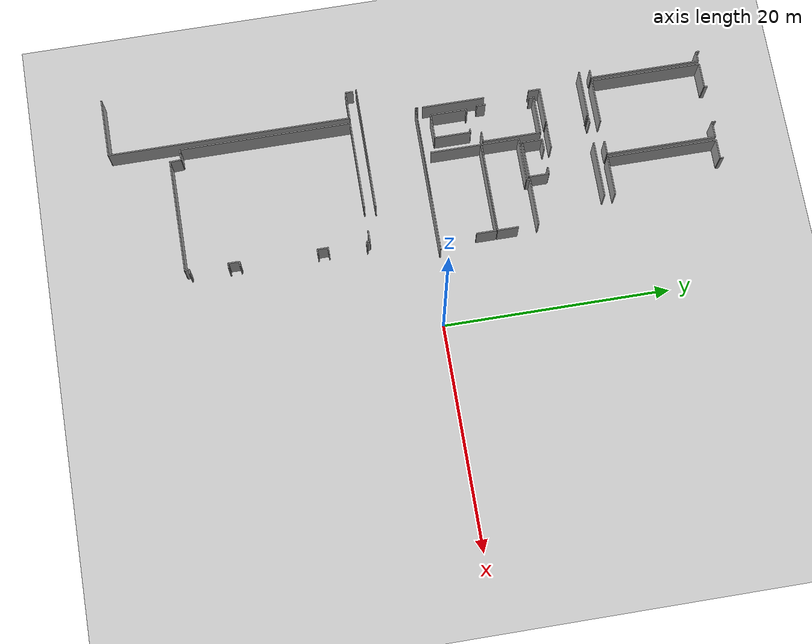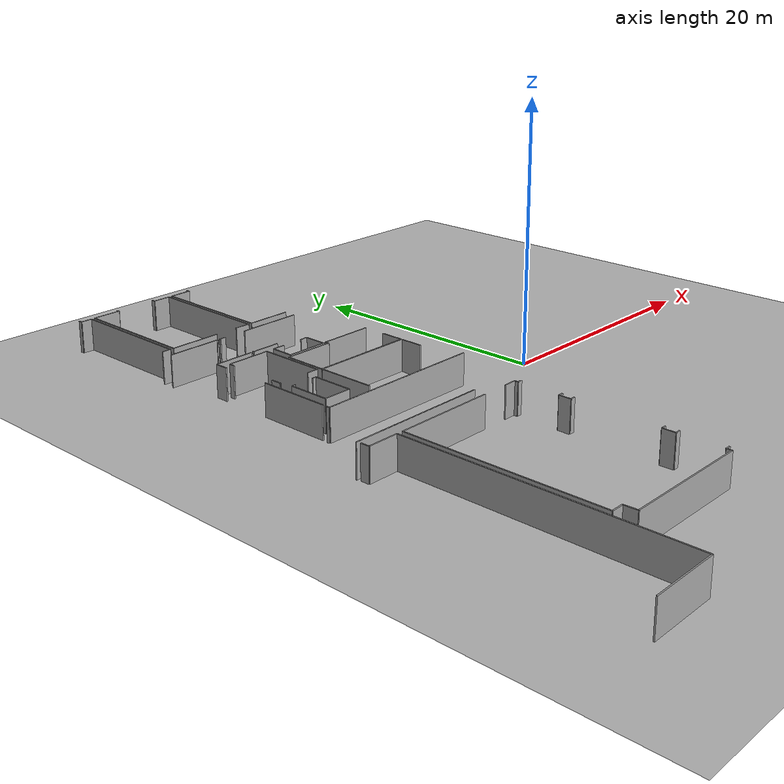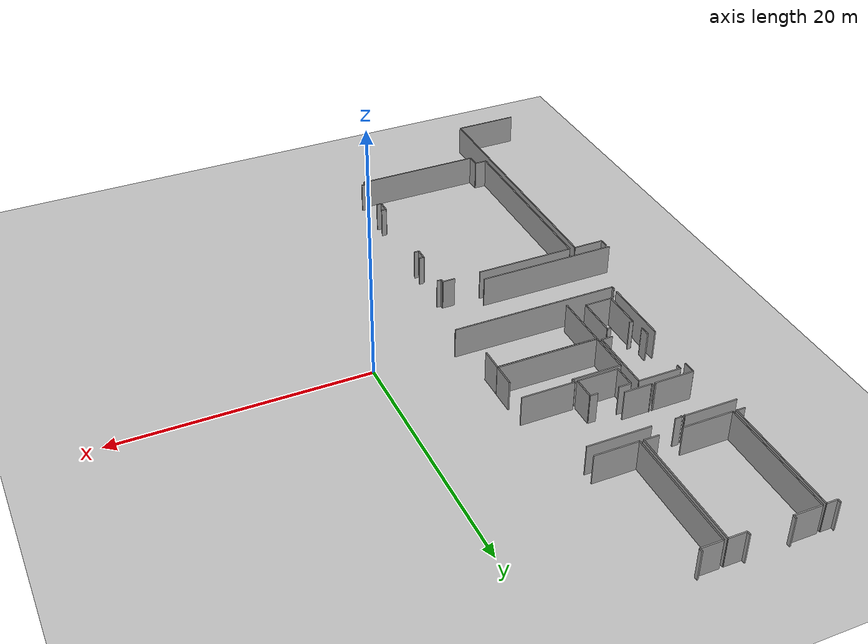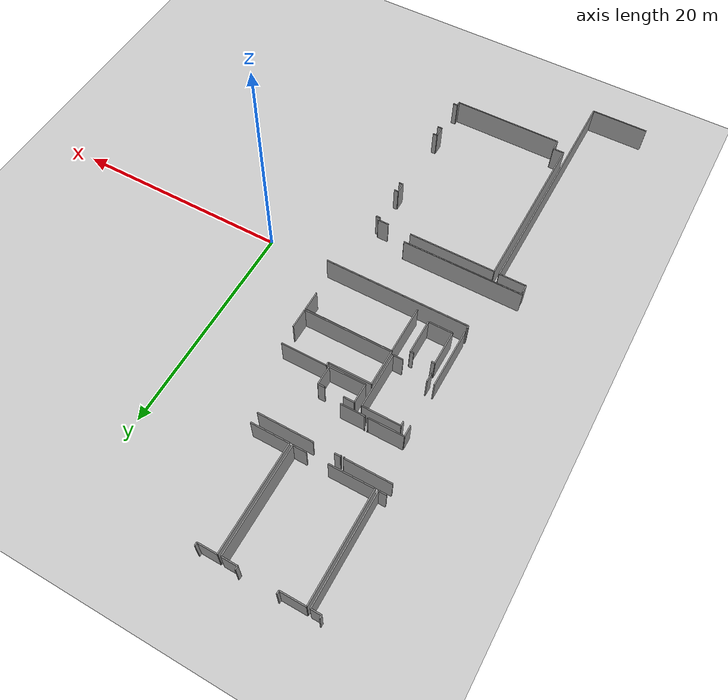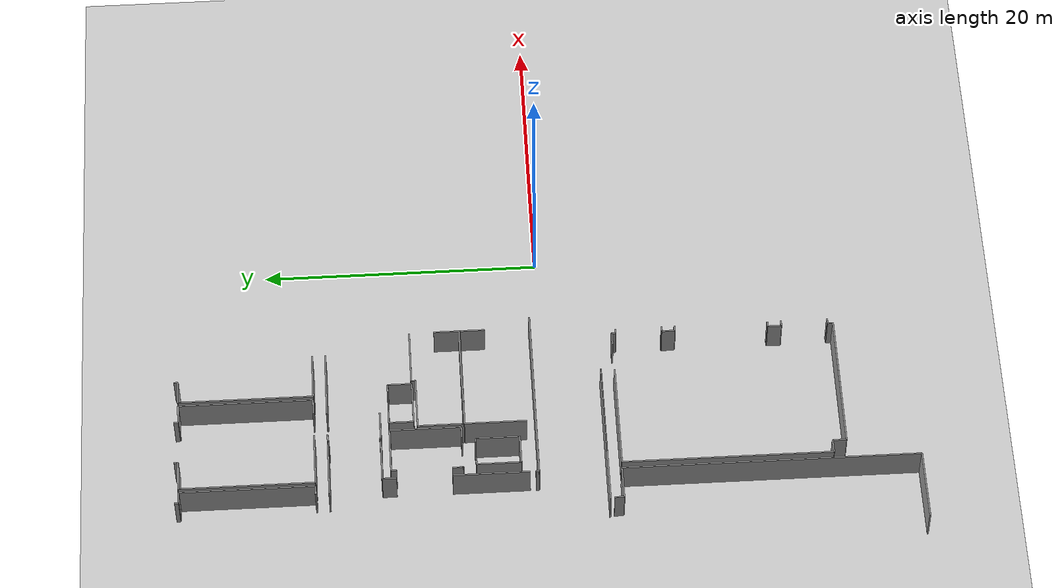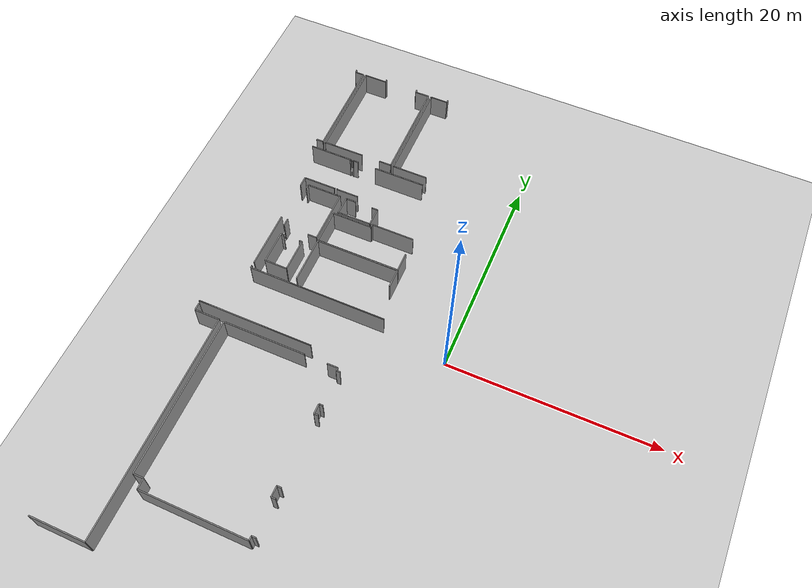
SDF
<sdf version="1.6">
 <world name="default">
  <model name="ground_plane">
   <static>1</static>
   <link name="link">
    <collision name="collision">
     <geometry><plane><normal>0 0 1</normal><size>100 100</size></plane></geometry>
     <surface><friction><ode><mu>100</mu><mu2>50</mu2></ode></friction></surface>
    </collision>
    <visual name="visual">
     <cast_shadows>0</cast_shadows>
     <geometry><plane><normal>0 0 1</normal><size>100 100</size></plane></geometry>
     <material>
      <script><uri>file://media/materials/scripts/gazebo.material</uri><name>Gazebo/Grey</name></script>
     </material>
    </visual>
   </link>
  </model>
  <model name="0510032192_A_40_1_103">
   <static>1</static>
   <link name="Wall_141">
    <collision name="Wall_141_Collision">
     <geometry><box><size>5.53466390558 0.1 2.5</size></box></geometry>
     <pose>2.76733195279 0 1.25 0 0 0</pose>
    </collision>
    <visual name="Wall_141_Visual">
     <pose>2.76733195279 0 1.25 0 0 0</pose>
     <geometry><box><size>5.53466390558 0.1 2.5</size></box></geometry>
     <material>
      <script><uri>file://media/materials/scripts/gazebo.material</uri><name>Gazebo/Grey</name></script>
      <ambient>1 1 1 1</ambient>
     </material>
    </visual>
    <pose>48.0369189333 -25.3327912797 0 0 0 1.57079632679</pose>
   </link>
   <link name="Wall_142">
    <collision name="Wall_142_Collision">
     <geometry><box><size>1.01241218096 0.1 2.5</size></box></geometry>
     <pose>0.506206090481 0 1.25 0 0 0</pose>
    </collision>
    <visual name="Wall_142_Visual">
     <pose>0.506206090481 0 1.25 0 0 0</pose>
     <geometry><box><size>1.01241218096 0.1 2.5</size></box></geometry>
     <material>
      <script><uri>file://media/materials/scripts/gazebo.material</uri><name>Gazebo/Grey</name></script>
      <ambient>1 1 1 1</ambient>
     </material>
    </visual>
    <pose>48.0369189333 -15.7928169426 0 0 0 1.57079632679</pose>
   </link>
   <link name="Wall_143">
    <collision name="Wall_143_Collision">
     <geometry><box><size>3.13353575648 0.1 2.5</size></box></geometry>
     <pose>1.56676787824 0 1.25 0 0 0</pose>
    </collision>
    <visual name="Wall_143_Visual">
     <pose>1.56676787824 0 1.25 0 0 0</pose>
     <geometry><box><size>3.13353575648 0.1 2.5</size></box></geometry>
     <material>
      <script><uri>file://media/materials/scripts/gazebo.material</uri><name>Gazebo/Grey</name></script>
      <ambient>1 1 1 1</ambient>
     </material>
    </visual>
    <pose>48.0369189333 -14.7804047616 0 0 0 0.0</pose>
   </link>
   <link name="Wall_144">
    <collision name="Wall_144_Collision">
     <geometry><box><size>0.066825047959 0.1 2.5</size></box></geometry>
     <pose>0.0334125239795 0 1.25 0 0 0</pose>
    </collision>
    <visual name="Wall_144_Visual">
     <pose>0.0334125239795 0 1.25 0 0 0</pose>
     <geometry><box><size>0.066825047959 0.1 2.5</size></box></geometry>
     <material>
      <script><uri>file://media/materials/scripts/gazebo.material</uri><name>Gazebo/Grey</name></script>
      <ambient>1 1 1 1</ambient>
     </material>
    </visual>
    <pose>51.1704546898 -14.7804047616 0 0 0 1.57079632679</pose>
   </link>
   <link name="Wall_145">
    <collision name="Wall_145_Collision">
     <geometry><box><size>0.103794798826 0.1 2.5</size></box></geometry>
     <pose>0.0518973994131 0 1.25 0 0 0</pose>
    </collision>
    <visual name="Wall_145_Visual">
     <pose>0.0518973994131 0 1.25 0 0 0</pose>
     <geometry><box><size>0.103794798826 0.1 2.5</size></box></geometry>
     <material>
      <script><uri>file://media/materials/scripts/gazebo.material</uri><name>Gazebo/Grey</name></script>
      <ambient>1 1 1 1</ambient>
     </material>
    </visual>
    <pose>51.1704546898 -11.100072415 0 0 0 1.57079632679</pose>
   </link>
   <link name="Wall_146">
    <collision name="Wall_146_Collision">
     <geometry><box><size>4.16945104366 0.1 2.5</size></box></geometry>
     <pose>2.08472552183 0 1.25 0 0 0</pose>
    </collision>
    <visual name="Wall_146_Visual">
     <pose>2.08472552183 0 1.25 0 0 0</pose>
     <geometry><box><size>4.16945104366 0.1 2.5</size></box></geometry>
     <material>
      <script><uri>file://media/materials/scripts/gazebo.material</uri><name>Gazebo/Grey</name></script>
      <ambient>1 1 1 1</ambient>
     </material>
    </visual>
    <pose>51.1704546898 -10.9962776161 0 0 0 3.14159265359</pose>
   </link>
   <link name="Wall_163">
    <collision name="Wall_163_Collision">
     <geometry><box><size>0.785384879245 0.1 2.5</size></box></geometry>
     <pose>0.392692439622 0 1.25 0 0 0</pose>
    </collision>
    <visual name="Wall_163_Visual">
     <pose>0.392692439622 0 1.25 0 0 0</pose>
     <geometry><box><size>0.785384879245 0.1 2.5</size></box></geometry>
     <material>
      <script><uri>file://media/materials/scripts/gazebo.material</uri><name>Gazebo/Grey</name></script>
      <ambient>1 1 1 1</ambient>
     </material>
    </visual>
    <pose>48.6773468169 -20.5763977996 0 0 0 1.57079632679</pose>
   </link>
   <link name="Wall_164">
    <collision name="Wall_164_Collision">
     <geometry><box><size>0.406794303355 0.1 2.5</size></box></geometry>
     <pose>0.203397151678 0 1.25 0 0 0</pose>
    </collision>
    <visual name="Wall_164_Visual">
     <pose>0.203397151678 0 1.25 0 0 0</pose>
     <geometry><box><size>0.406794303355 0.1 2.5</size></box></geometry>
     <material>
      <script><uri>file://media/materials/scripts/gazebo.material</uri><name>Gazebo/Grey</name></script>
      <ambient>1 1 1 1</ambient>
     </material>
    </visual>
    <pose>48.6773468169 -15.8386797606 0 0 0 1.57079632679</pose>
   </link>
   <link name="Wall_165">
    <collision name="Wall_165_Collision">
     <geometry><box><size>3.408712665 0.1 2.5</size></box></geometry>
     <pose>1.7043563325 0 1.25 0 0 0</pose>
    </collision>
    <visual name="Wall_165_Visual">
     <pose>1.7043563325 0 1.25 0 0 0</pose>
     <geometry><box><size>3.408712665 0.1 2.5</size></box></geometry>
     <material>
      <script><uri>file://media/materials/scripts/gazebo.material</uri><name>Gazebo/Grey</name></script>
      <ambient>1 1 1 1</ambient>
     </material>
    </visual>
    <pose>48.6773468169 -15.4318854573 0 0 0 0.0</pose>
   </link>
   <link name="Wall_166">
    <collision name="Wall_166_Collision">
     <geometry><box><size>5.15556515442 0.1 2.5</size></box></geometry>
     <pose>2.57778257721 0 1.25 0 0 0</pose>
    </collision>
    <visual name="Wall_166_Visual">
     <pose>2.57778257721 0 1.25 0 0 0</pose>
     <geometry><box><size>5.15556515442 0.1 2.5</size></box></geometry>
     <material>
      <script><uri>file://media/materials/scripts/gazebo.material</uri><name>Gazebo/Grey</name></script>
      <ambient>1 1 1 1</ambient>
     </material>
    </visual>
    <pose>52.0860594819 -15.4318854573 0 0 0 -1.57079632679</pose>
   </link>
   <link name="Wall_167">
    <collision name="Wall_167_Collision">
     <geometry><box><size>0.893245080228 0.1 2.5</size></box></geometry>
     <pose>0.446622540114 0 1.25 0 0 0</pose>
    </collision>
    <visual name="Wall_167_Visual">
     <pose>0.446622540114 0 1.25 0 0 0</pose>
     <geometry><box><size>0.893245080228 0.1 2.5</size></box></geometry>
     <material>
      <script><uri>file://media/materials/scripts/gazebo.material</uri><name>Gazebo/Grey</name></script>
      <ambient>1 1 1 1</ambient>
     </material>
    </visual>
    <pose>52.0860594819 -20.5874506117 0 0 0 3.14159265359</pose>
   </link>
   <link name="Wall_168">
    <collision name="Wall_168_Collision">
     <geometry><box><size>0.0437255955053 0.1 2.5</size></box></geometry>
     <pose>0.0218627977527 0 1.25 0 0 0</pose>
    </collision>
    <visual name="Wall_168_Visual">
     <pose>0.0218627977527 0 1.25 0 0 0</pose>
     <geometry><box><size>0.0437255955053 0.1 2.5</size></box></geometry>
     <material>
      <script><uri>file://media/materials/scripts/gazebo.material</uri><name>Gazebo/Grey</name></script>
      <ambient>1 1 1 1</ambient>
     </material>
    </visual>
    <pose>48.7196524081 -20.5874506117 0 0 0 2.88604355965</pose>
   </link>
   <link name="Wall_169">
    <collision name="Wall_169_Collision">
     <geometry><box><size>2.17905555626 0.1 2.5</size></box></geometry>
     <pose>1.08952777813 0 1.25 0 0 0</pose>
    </collision>
    <visual name="Wall_169_Visual">
     <pose>1.08952777813 0 1.25 0 0 0</pose>
     <geometry><box><size>2.17905555626 0.1 2.5</size></box></geometry>
     <material>
      <script><uri>file://media/materials/scripts/gazebo.material</uri><name>Gazebo/Grey</name></script>
      <ambient>1 1 1 1</ambient>
     </material>
    </visual>
    <pose>48.870707507 -24.7314928919 0 0 0 0.0</pose>
   </link>
   <link name="Wall_170">
    <collision name="Wall_170_Collision">
     <geometry><box><size>3.1898161676 0.1 2.5</size></box></geometry>
     <pose>1.5949080838 0 1.25 0 0 0</pose>
    </collision>
    <visual name="Wall_170_Visual">
     <pose>1.5949080838 0 1.25 0 0 0</pose>
     <geometry><box><size>3.1898161676 0.1 2.5</size></box></geometry>
     <material>
      <script><uri>file://media/materials/scripts/gazebo.material</uri><name>Gazebo/Grey</name></script>
      <ambient>1 1 1 1</ambient>
     </material>
    </visual>
    <pose>51.0497630633 -24.7314928919 0 0 0 1.57079632679</pose>
   </link>
   <link name="Wall_171">
    <collision name="Wall_171_Collision">
     <geometry><box><size>0.303126548347 0.1 2.5</size></box></geometry>
     <pose>0.151563274173 0 1.25 0 0 0</pose>
    </collision>
    <visual name="Wall_171_Visual">
     <pose>0.151563274173 0 1.25 0 0 0</pose>
     <geometry><box><size>0.303126548347 0.1 2.5</size></box></geometry>
     <material>
      <script><uri>file://media/materials/scripts/gazebo.material</uri><name>Gazebo/Grey</name></script>
      <ambient>1 1 1 1</ambient>
     </material>
    </visual>
    <pose>51.0497630633 -21.5416767243 0 0 0 3.14159265359</pose>
   </link>
   <link name="Wall_172">
    <collision name="Wall_172_Collision">
     <geometry><box><size>0.291057385692 0.1 2.5</size></box></geometry>
     <pose>0.145528692846 0 1.25 0 0 0</pose>
    </collision>
    <visual name="Wall_172_Visual">
     <pose>0.145528692846 0 1.25 0 0 0</pose>
     <geometry><box><size>0.291057385692 0.1 2.5</size></box></geometry>
     <material>
      <script><uri>file://media/materials/scripts/gazebo.material</uri><name>Gazebo/Grey</name></script>
      <ambient>1 1 1 1</ambient>
     </material>
    </visual>
    <pose>49.1606214984 -21.5416767243 0 0 0 3.14159265359</pose>
   </link>
   <link name="Wall_173">
    <collision name="Wall_173_Collision">
     <geometry><box><size>3.18981637252 0.1 2.5</size></box></geometry>
     <pose>1.59490818626 0 1.25 0 0 0</pose>
    </collision>
    <visual name="Wall_173_Visual">
     <pose>1.59490818626 0 1.25 0 0 0</pose>
     <geometry><box><size>3.18981637252 0.1 2.5</size></box></geometry>
     <material>
      <script><uri>file://media/materials/scripts/gazebo.material</uri><name>Gazebo/Grey</name></script>
      <ambient>1 1 1 1</ambient>
     </material>
    </visual>
    <pose>48.8695641127 -21.5416767243 0 0 0 -1.57043787532</pose>
   </link>
   <link name="Wall_175">
    <collision name="Wall_175_Collision">
     <geometry><box><size>0.693024023986 0.1 2.5</size></box></geometry>
     <pose>0.346512011993 0 1.25 0 0 0</pose>
    </collision>
    <visual name="Wall_175_Visual">
     <pose>0.346512011993 0 1.25 0 0 0</pose>
     <geometry><box><size>0.693024023986 0.1 2.5</size></box></geometry>
     <material>
      <script><uri>file://media/materials/scripts/gazebo.material</uri><name>Gazebo/Grey</name></script>
      <ambient>1 1 1 1</ambient>
     </material>
    </visual>
    <pose>46.9926187542 -10.0329043487 0 0 0 0.0</pose>
   </link>
   <link name="Wall_176">
    <collision name="Wall_176_Collision">
     <geometry><box><size>9.7241878724 0.1 2.5</size></box></geometry>
     <pose>4.8620939362 0 1.25 0 0 0</pose>
    </collision>
    <visual name="Wall_176_Visual">
     <pose>4.8620939362 0 1.25 0 0 0</pose>
     <geometry><box><size>9.7241878724 0.1 2.5</size></box></geometry>
     <material>
      <script><uri>file://media/materials/scripts/gazebo.material</uri><name>Gazebo/Grey</name></script>
      <ambient>1 1 1 1</ambient>
     </material>
    </visual>
    <pose>47.6856427782 -10.0329043487 0 0 0 1.57079632679</pose>
   </link>
   <link name="Wall_177">
    <collision name="Wall_177_Collision">
     <geometry><box><size>0.890831247697 0.1 2.5</size></box></geometry>
     <pose>0.445415623849 0 1.25 0 0 0</pose>
    </collision>
    <visual name="Wall_177_Visual">
     <pose>0.445415623849 0 1.25 0 0 0</pose>
     <geometry><box><size>0.890831247697 0.1 2.5</size></box></geometry>
     <material>
      <script><uri>file://media/materials/scripts/gazebo.material</uri><name>Gazebo/Grey</name></script>
      <ambient>1 1 1 1</ambient>
     </material>
    </visual>
    <pose>47.6856427782 -0.308716476313 0 0 0 3.14159265359</pose>
   </link>
   <link name="Wall_178">
    <collision name="Wall_178_Collision">
     <geometry><box><size>0.28330771283 0.1 2.5</size></box></geometry>
     <pose>0.141653856415 0 1.25 0 0 0</pose>
    </collision>
    <visual name="Wall_178_Visual">
     <pose>0.141653856415 0 1.25 0 0 0</pose>
     <geometry><box><size>0.28330771283 0.1 2.5</size></box></geometry>
     <material>
      <script><uri>file://media/materials/scripts/gazebo.material</uri><name>Gazebo/Grey</name></script>
      <ambient>1 1 1 1</ambient>
     </material>
    </visual>
    <pose>46.7948115305 -0.308716476313 0 0 0 1.57079632679</pose>
   </link>
   <link name="Wall_182">
    <collision name="Wall_182_Collision">
     <geometry><box><size>0.0918526799893 0.1 2.5</size></box></geometry>
     <pose>0.0459263399947 0 1.25 0 0 0</pose>
    </collision>
    <visual name="Wall_182_Visual">
     <pose>0.0459263399947 0 1.25 0 0 0</pose>
     <geometry><box><size>0.0918526799893 0.1 2.5</size></box></geometry>
     <material>
      <script><uri>file://media/materials/scripts/gazebo.material</uri><name>Gazebo/Grey</name></script>
      <ambient>1 1 1 1</ambient>
     </material>
    </visual>
    <pose>51.4294970335 -14.7886626097 0 0 0 1.57079632679</pose>
   </link>
   <link name="Wall_183">
    <collision name="Wall_183_Collision">
     <geometry><box><size>0.0993482652167 0.1 2.5</size></box></geometry>
     <pose>0.0496741326083 0 1.25 0 0 0</pose>
    </collision>
    <visual name="Wall_183_Visual">
     <pose>0.0496741326083 0 1.25 0 0 0</pose>
     <geometry><box><size>0.0993482652167 0.1 2.5</size></box></geometry>
     <material>
      <script><uri>file://media/materials/scripts/gazebo.material</uri><name>Gazebo/Grey</name></script>
      <ambient>1 1 1 1</ambient>
     </material>
    </visual>
    <pose>51.4294970335 -11.0928309174 0 0 0 1.57079632679</pose>
   </link>
   <link name="Wall_184">
    <collision name="Wall_184_Collision">
     <geometry><box><size>0.515797898695 0.1 2.5</size></box></geometry>
     <pose>0.257898949348 0 1.25 0 0 0</pose>
    </collision>
    <visual name="Wall_184_Visual">
     <pose>0.257898949348 0 1.25 0 0 0</pose>
     <geometry><box><size>0.515797898695 0.1 2.5</size></box></geometry>
     <material>
      <script><uri>file://media/materials/scripts/gazebo.material</uri><name>Gazebo/Grey</name></script>
      <ambient>1 1 1 1</ambient>
     </material>
    </visual>
    <pose>51.4294970335 -10.9934826522 0 0 0 0.0</pose>
   </link>
   <link name="Wall_185">
    <collision name="Wall_185_Collision">
     <geometry><box><size>4.98227738747 0.1 2.5</size></box></geometry>
     <pose>2.49113869374 0 1.25 0 0 0</pose>
    </collision>
    <visual name="Wall_185_Visual">
     <pose>2.49113869374 0 1.25 0 0 0</pose>
     <geometry><box><size>4.98227738747 0.1 2.5</size></box></geometry>
     <material>
      <script><uri>file://media/materials/scripts/gazebo.material</uri><name>Gazebo/Grey</name></script>
      <ambient>1 1 1 1</ambient>
     </material>
    </visual>
    <pose>53.7973397025 -10.9934826522 0 0 0 0.0</pose>
   </link>
   <link name="Wall_204">
    <collision name="Wall_204_Collision">
     <geometry><box><size>2.20370882796 0.1 2.5</size></box></geometry>
     <pose>1.10185441398 0 1.25 0 0 0</pose>
    </collision>
    <visual name="Wall_204_Visual">
     <pose>1.10185441398 0 1.25 0 0 0</pose>
     <geometry><box><size>2.20370882796 0.1 2.5</size></box></geometry>
     <material>
      <script><uri>file://media/materials/scripts/gazebo.material</uri><name>Gazebo/Grey</name></script>
      <ambient>1 1 1 1</ambient>
     </material>
    </visual>
    <pose>53.6331990904 -14.7831997256 0 0 0 -3.13911370098</pose>
   </link>
   <link name="Wall_205">
    <collision name="Wall_205_Collision">
     <geometry><box><size>9.7504859426 0.1 2.5</size></box></geometry>
     <pose>4.8752429713 0 1.25 0 0 0</pose>
    </collision>
    <visual name="Wall_205_Visual">
     <pose>4.8752429713 0 1.25 0 0 0</pose>
     <geometry><box><size>9.7504859426 0.1 2.5</size></box></geometry>
     <material>
      <script><uri>file://media/materials/scripts/gazebo.material</uri><name>Gazebo/Grey</name></script>
      <ambient>1 1 1 1</ambient>
     </material>
    </visual>
    <pose>47.9741592875 -10.0386213205 0 0 0 1.57079632679</pose>
   </link>
   <link name="Wall_206">
    <collision name="Wall_206_Collision">
     <geometry><box><size>2.22860264505 0.1 2.5</size></box></geometry>
     <pose>1.11430132253 0 1.25 0 0 0</pose>
    </collision>
    <visual name="Wall_206_Visual">
     <pose>1.11430132253 0 1.25 0 0 0</pose>
     <geometry><box><size>2.22860264505 0.1 2.5</size></box></geometry>
     <material>
      <script><uri>file://media/materials/scripts/gazebo.material</uri><name>Gazebo/Grey</name></script>
      <ambient>1 1 1 1</ambient>
     </material>
    </visual>
    <pose>47.9741592875 -0.288135377892 0 0 0 0.0</pose>
   </link>
   <link name="Wall_207">
    <collision name="Wall_207_Collision">
     <geometry><box><size>0.288135377892 0.1 2.5</size></box></geometry>
     <pose>0.144067688946 0 1.25 0 0 0</pose>
    </collision>
    <visual name="Wall_207_Visual">
     <pose>0.144067688946 0 1.25 0 0 0</pose>
     <geometry><box><size>0.288135377892 0.1 2.5</size></box></geometry>
     <material>
      <script><uri>file://media/materials/scripts/gazebo.material</uri><name>Gazebo/Grey</name></script>
      <ambient>1 1 1 1</ambient>
     </material>
    </visual>
    <pose>50.2027619326 -0.288135377892 0 0 0 1.57079632679</pose>
   </link>
   <link name="Wall_208">
    <collision name="Wall_208_Collision">
     <geometry><box><size>0.315957973905 0.1 2.5</size></box></geometry>
     <pose>0.157978986953 0 1.25 0 0 0</pose>
    </collision>
    <visual name="Wall_208_Visual">
     <pose>0.157978986953 0 1.25 0 0 0</pose>
     <geometry><box><size>0.315957973905 0.1 2.5</size></box></geometry>
     <material>
      <script><uri>file://media/materials/scripts/gazebo.material</uri><name>Gazebo/Grey</name></script>
      <ambient>1 1 1 1</ambient>
     </material>
    </visual>
    <pose>53.6034708371 -0.0 0 0 0 -1.57079632679</pose>
   </link>
   <link name="Wall_209">
    <collision name="Wall_209_Collision">
     <geometry><box><size>1.40662914639 0.1 2.5</size></box></geometry>
     <pose>0.703314573196 0 1.25 0 0 0</pose>
    </collision>
    <visual name="Wall_209_Visual">
     <pose>0.703314573196 0 1.25 0 0 0</pose>
     <geometry><box><size>1.40662914639 0.1 2.5</size></box></geometry>
     <material>
      <script><uri>file://media/materials/scripts/gazebo.material</uri><name>Gazebo/Grey</name></script>
      <ambient>1 1 1 1</ambient>
     </material>
    </visual>
    <pose>53.6034708371 -0.315957973905 0 0 0 0.0</pose>
   </link>
   <link name="Wall_210">
    <collision name="Wall_210_Collision">
     <geometry><box><size>9.71135644684 0.1 2.5</size></box></geometry>
     <pose>4.85567822342 0 1.25 0 0 0</pose>
    </collision>
    <visual name="Wall_210_Visual">
     <pose>4.85567822342 0 1.25 0 0 0</pose>
     <geometry><box><size>9.71135644684 0.1 2.5</size></box></geometry>
     <material>
      <script><uri>file://media/materials/scripts/gazebo.material</uri><name>Gazebo/Grey</name></script>
      <ambient>1 1 1 1</ambient>
     </material>
    </visual>
    <pose>55.0100999835 -0.315957973905 0 0 0 -1.57079632679</pose>
   </link>
   <link name="Wall_211">
    <collision name="Wall_211_Collision">
     <geometry><box><size>1.20043703073 0.1 2.5</size></box></geometry>
     <pose>0.600218515366 0 1.25 0 0 0</pose>
    </collision>
    <visual name="Wall_211_Visual">
     <pose>0.600218515366 0 1.25 0 0 0</pose>
     <geometry><box><size>1.20043703073 0.1 2.5</size></box></geometry>
     <material>
      <script><uri>file://media/materials/scripts/gazebo.material</uri><name>Gazebo/Grey</name></script>
      <ambient>1 1 1 1</ambient>
     </material>
    </visual>
    <pose>55.0100999835 -10.0273144207 0 0 0 3.14159265359</pose>
   </link>
   <link name="Wall_212">
    <collision name="Wall_212_Collision">
     <geometry><box><size>3.97407373752 0.1 2.5</size></box></geometry>
     <pose>1.98703686876 0 1.25 0 0 0</pose>
    </collision>
    <visual name="Wall_212_Visual">
     <pose>1.98703686876 0 1.25 0 0 0</pose>
     <geometry><box><size>3.97407373752 0.1 2.5</size></box></geometry>
     <material>
      <script><uri>file://media/materials/scripts/gazebo.material</uri><name>Gazebo/Grey</name></script>
      <ambient>1 1 1 1</ambient>
     </material>
    </visual>
    <pose>51.94821694 -10.0273144207 0 0 0 -3.13874748368</pose>
   </link>
   <link name="Wall_213">
    <collision name="Wall_213_Collision">
     <geometry><box><size>9.73320798343 0.1 2.5</size></box></geometry>
     <pose>4.86660399172 0 1.25 0 0 0</pose>
    </collision>
    <visual name="Wall_213_Visual">
     <pose>4.86660399172 0 1.25 0 0 0</pose>
     <geometry><box><size>9.73320798343 0.1 2.5</size></box></geometry>
     <material>
      <script><uri>file://media/materials/scripts/gazebo.material</uri><name>Gazebo/Grey</name></script>
      <ambient>1 1 1 1</ambient>
     </material>
    </visual>
    <pose>55.308271823 -10.0456087305 0 0 0 1.57079632679</pose>
   </link>
   <link name="Wall_214">
    <collision name="Wall_214_Collision">
     <geometry><box><size>1.73465628295 0.1 2.5</size></box></geometry>
     <pose>0.867328141476 0 1.25 0 0 0</pose>
    </collision>
    <visual name="Wall_214_Visual">
     <pose>0.867328141476 0 1.25 0 0 0</pose>
     <geometry><box><size>1.73465628295 0.1 2.5</size></box></geometry>
     <material>
      <script><uri>file://media/materials/scripts/gazebo.material</uri><name>Gazebo/Grey</name></script>
      <ambient>1 1 1 1</ambient>
     </material>
    </visual>
    <pose>55.308271823 -0.312400747018 0 0 0 0.0</pose>
   </link>
   <link name="Wall_215">
    <collision name="Wall_215_Collision">
     <geometry><box><size>0.292327823866 0.1 2.5</size></box></geometry>
     <pose>0.146163911933 0 1.25 0 0 0</pose>
    </collision>
    <visual name="Wall_215_Visual">
     <pose>0.146163911933 0 1.25 0 0 0</pose>
     <geometry><box><size>0.292327823866 0.1 2.5</size></box></geometry>
     <material>
      <script><uri>file://media/materials/scripts/gazebo.material</uri><name>Gazebo/Grey</name></script>
      <ambient>1 1 1 1</ambient>
     </material>
    </visual>
    <pose>57.0429281059 -0.312400747018 0 0 0 1.57079632679</pose>
   </link>
   <link name="Wall_220">
    <collision name="Wall_220_Collision">
     <geometry><box><size>3.47820732453 0.1 2.5</size></box></geometry>
     <pose>1.73910366227 0 1.25 0 0 0</pose>
    </collision>
    <visual name="Wall_220_Visual">
     <pose>1.73910366227 0 1.25 0 0 0</pose>
     <geometry><box><size>3.47820732453 0.1 2.5</size></box></geometry>
     <material>
      <script><uri>file://media/materials/scripts/gazebo.material</uri><name>Gazebo/Grey</name></script>
      <ambient>1 1 1 1</ambient>
     </material>
    </visual>
    <pose>58.7864774561 -10.0421785474 0 0 0 -3.14060646062</pose>
   </link>
   <link name="Wall_350">
    <collision name="Wall_350_Collision">
     <geometry><box><size>1.77797822469 0.1 2.5</size></box></geometry>
     <pose>0.888989112345 0 1.25 0 0 0</pose>
    </collision>
    <visual name="Wall_350_Visual">
     <pose>0.888989112345 0 1.25 0 0 0</pose>
     <geometry><box><size>1.77797822469 0.1 2.5</size></box></geometry>
     <material>
      <script><uri>file://media/materials/scripts/gazebo.material</uri><name>Gazebo/Grey</name></script>
      <ambient>1 1 1 1</ambient>
     </material>
    </visual>
    <pose>52.7365238271 -17.1970322564 0 0 0 1.57079632679</pose>
   </link>
   <link name="Wall_351">
    <collision name="Wall_351_Collision">
     <geometry><box><size>0.960959434909 0.1 2.5</size></box></geometry>
     <pose>0.480479717455 0 1.25 0 0 0</pose>
    </collision>
    <visual name="Wall_351_Visual">
     <pose>0.480479717455 0 1.25 0 0 0</pose>
     <geometry><box><size>0.960959434909 0.1 2.5</size></box></geometry>
     <material>
      <script><uri>file://media/materials/scripts/gazebo.material</uri><name>Gazebo/Grey</name></script>
      <ambient>1 1 1 1</ambient>
     </material>
    </visual>
    <pose>52.7365238271 -15.4190540317 0 0 0 0.0</pose>
   </link>
   <link name="Wall_352">
    <collision name="Wall_352_Collision">
     <geometry><box><size>0.604601527067 0.1 2.5</size></box></geometry>
     <pose>0.302300763533 0 1.25 0 0 0</pose>
    </collision>
    <visual name="Wall_352_Visual">
     <pose>0.302300763533 0 1.25 0 0 0</pose>
     <geometry><box><size>0.604601527067 0.1 2.5</size></box></geometry>
     <material>
      <script><uri>file://media/materials/scripts/gazebo.material</uri><name>Gazebo/Grey</name></script>
      <ambient>1 1 1 1</ambient>
     </material>
    </visual>
    <pose>55.3844981134 -15.4190540317 0 0 0 0.0</pose>
   </link>
   <link name="Wall_353">
    <collision name="Wall_353_Collision">
     <geometry><box><size>1.75803234536 0.1 2.5</size></box></geometry>
     <pose>0.879016172678 0 1.25 0 0 0</pose>
    </collision>
    <visual name="Wall_353_Visual">
     <pose>0.879016172678 0 1.25 0 0 0</pose>
     <geometry><box><size>1.75803234536 0.1 2.5</size></box></geometry>
     <material>
      <script><uri>file://media/materials/scripts/gazebo.material</uri><name>Gazebo/Grey</name></script>
      <ambient>1 1 1 1</ambient>
     </material>
    </visual>
    <pose>55.9890996405 -15.4190540317 0 0 0 -1.57079632679</pose>
   </link>
   <link name="Wall_354">
    <collision name="Wall_354_Collision">
     <geometry><box><size>3.25263697021 0.1 2.5</size></box></geometry>
     <pose>1.62631848511 0 1.25 0 0 0</pose>
    </collision>
    <visual name="Wall_354_Visual">
     <pose>1.62631848511 0 1.25 0 0 0</pose>
     <geometry><box><size>3.25263697021 0.1 2.5</size></box></geometry>
     <material>
      <script><uri>file://media/materials/scripts/gazebo.material</uri><name>Gazebo/Grey</name></script>
      <ambient>1 1 1 1</ambient>
     </material>
    </visual>
    <pose>55.9890996405 -17.1770863771 0 0 0 -3.13546039705</pose>
   </link>
   <link name="Wall_355">
    <collision name="Wall_355_Collision">
     <geometry><box><size>3.33337568127 0.1 2.5</size></box></geometry>
     <pose>1.66668784064 0 1.25 0 0 0</pose>
    </collision>
    <visual name="Wall_355_Visual">
     <pose>1.66668784064 0 1.25 0 0 0</pose>
     <geometry><box><size>3.33337568127 0.1 2.5</size></box></geometry>
     <material>
      <script><uri>file://media/materials/scripts/gazebo.material</uri><name>Gazebo/Grey</name></script>
      <ambient>1 1 1 1</ambient>
     </material>
    </visual>
    <pose>52.3449747818 -20.7880527994 0 0 0 1.57079632679</pose>
   </link>
   <link name="Wall_356">
    <collision name="Wall_356_Collision">
     <geometry><box><size>3.89058986444 0.1 2.5</size></box></geometry>
     <pose>1.94529493222 0 1.25 0 0 0</pose>
    </collision>
    <visual name="Wall_356_Visual">
     <pose>1.94529493222 0 1.25 0 0 0</pose>
     <geometry><box><size>3.89058986444 0.1 2.5</size></box></geometry>
     <material>
      <script><uri>file://media/materials/scripts/gazebo.material</uri><name>Gazebo/Grey</name></script>
      <ambient>1 1 1 1</ambient>
     </material>
    </visual>
    <pose>52.3449747818 -17.4546771181 0 0 0 0.0</pose>
   </link>
   <link name="Wall_357">
    <collision name="Wall_357_Collision">
     <geometry><box><size>0.307446038139 0.1 2.5</size></box></geometry>
     <pose>0.153723019069 0 1.25 0 0 0</pose>
    </collision>
    <visual name="Wall_357_Visual">
     <pose>0.153723019069 0 1.25 0 0 0</pose>
     <geometry><box><size>0.307446038139 0.1 2.5</size></box></geometry>
     <material>
      <script><uri>file://media/materials/scripts/gazebo.material</uri><name>Gazebo/Grey</name></script>
      <ambient>1 1 1 1</ambient>
     </material>
    </visual>
    <pose>56.2355646462 -17.4546771181 0 0 0 1.57079632679</pose>
   </link>
   <link name="Wall_358">
    <collision name="Wall_358_Collision">
     <geometry><box><size>4.15611144284 0.1 2.5</size></box></geometry>
     <pose>2.07805572142 0 1.25 0 0 0</pose>
    </collision>
    <visual name="Wall_358_Visual">
     <pose>2.07805572142 0 1.25 0 0 0</pose>
     <geometry><box><size>4.15611144284 0.1 2.5</size></box></geometry>
     <material>
      <script><uri>file://media/materials/scripts/gazebo.material</uri><name>Gazebo/Grey</name></script>
      <ambient>1 1 1 1</ambient>
     </material>
    </visual>
    <pose>56.2355646462 -17.14723108 0 0 0 0.0</pose>
   </link>
   <link name="Wall_359">
    <collision name="Wall_359_Collision">
     <geometry><box><size>1.8444221412 0.1 2.5</size></box></geometry>
     <pose>0.922211070598 0 1.25 0 0 0</pose>
    </collision>
    <visual name="Wall_359_Visual">
     <pose>0.922211070598 0 1.25 0 0 0</pose>
     <geometry><box><size>1.8444221412 0.1 2.5</size></box></geometry>
     <material>
      <script><uri>file://media/materials/scripts/gazebo.material</uri><name>Gazebo/Grey</name></script>
      <ambient>1 1 1 1</ambient>
     </material>
    </visual>
    <pose>60.3916760891 -18.9341023719 0 0 0 -1.57079632679</pose>
   </link>
   <link name="Wall_360">
    <collision name="Wall_360_Collision">
     <geometry><box><size>8.04670694861 0.1 2.5</size></box></geometry>
     <pose>4.02335347431 0 1.25 0 0 0</pose>
    </collision>
    <visual name="Wall_360_Visual">
     <pose>4.02335347431 0 1.25 0 0 0</pose>
     <geometry><box><size>8.04670694861 0.1 2.5</size></box></geometry>
     <material>
      <script><uri>file://media/materials/scripts/gazebo.material</uri><name>Gazebo/Grey</name></script>
      <ambient>1 1 1 1</ambient>
     </material>
    </visual>
    <pose>60.3916760891 -20.7785245131 0 0 0 -3.14040853087</pose>
   </link>
   <link name="Wall_361">
    <collision name="Wall_361_Collision">
     <geometry><box><size>4.47130715384 0.1 2.5</size></box></geometry>
     <pose>2.23565357692 0 1.25 0 0 0</pose>
    </collision>
    <visual name="Wall_361_Visual">
     <pose>2.23565357692 0 1.25 0 0 0</pose>
     <geometry><box><size>4.47130715384 0.1 2.5</size></box></geometry>
     <material>
      <script><uri>file://media/materials/scripts/gazebo.material</uri><name>Gazebo/Grey</name></script>
      <ambient>1 1 1 1</ambient>
     </material>
    </visual>
    <pose>52.356662813 -25.3056039028 0 0 0 1.57079632679</pose>
   </link>
   <link name="Wall_362">
    <collision name="Wall_362_Collision">
     <geometry><box><size>8.03501327608 0.1 2.5</size></box></geometry>
     <pose>4.01750663804 0 1.25 0 0 0</pose>
    </collision>
    <visual name="Wall_362_Visual">
     <pose>4.01750663804 0 1.25 0 0 0</pose>
     <geometry><box><size>8.03501327608 0.1 2.5</size></box></geometry>
     <material>
      <script><uri>file://media/materials/scripts/gazebo.material</uri><name>Gazebo/Grey</name></script>
      <ambient>1 1 1 1</ambient>
     </material>
    </visual>
    <pose>52.356662813 -20.8342967489 0 0 0 0.0</pose>
   </link>
   <link name="Wall_363">
    <collision name="Wall_363_Collision">
     <geometry><box><size>1.81278823066 0.1 2.5</size></box></geometry>
     <pose>0.90639411533 0 1.25 0 0 0</pose>
    </collision>
    <visual name="Wall_363_Visual">
     <pose>0.90639411533 0 1.25 0 0 0</pose>
     <geometry><box><size>1.81278823066 0.1 2.5</size></box></geometry>
     <material>
      <script><uri>file://media/materials/scripts/gazebo.material</uri><name>Gazebo/Grey</name></script>
      <ambient>1 1 1 1</ambient>
     </material>
    </visual>
    <pose>60.3916760891 -20.8342967489 0 0 0 -1.57079632679</pose>
   </link>
   <link name="Wall_376">
    <collision name="Wall_376_Collision">
     <geometry><box><size>0.239477595823 0.1 2.5</size></box></geometry>
     <pose>0.119738797911 0 1.25 0 0 0</pose>
    </collision>
    <visual name="Wall_376_Visual">
     <pose>0.119738797911 0 1.25 0 0 0</pose>
     <geometry><box><size>0.239477595823 0.1 2.5</size></box></geometry>
     <material>
      <script><uri>file://media/materials/scripts/gazebo.material</uri><name>Gazebo/Grey</name></script>
      <ambient>1 1 1 1</ambient>
     </material>
    </visual>
    <pose>48.0347591884 -25.7195126599 0 0 0 -1.57079632679</pose>
   </link>
   <link name="Wall_377">
    <collision name="Wall_377_Collision">
     <geometry><box><size>13.2633745379 0.1 2.5</size></box></geometry>
     <pose>6.63168726894 0 1.25 0 0 0</pose>
    </collision>
    <visual name="Wall_377_Visual">
     <pose>6.63168726894 0 1.25 0 0 0</pose>
     <geometry><box><size>13.2633745379 0.1 2.5</size></box></geometry>
     <material>
      <script><uri>file://media/materials/scripts/gazebo.material</uri><name>Gazebo/Grey</name></script>
      <ambient>1 1 1 1</ambient>
     </material>
    </visual>
    <pose>48.0347591884 -25.9589902557 0 0 0 0.0</pose>
   </link>
   <link name="Wall_379">
    <collision name="Wall_379_Collision">
     <geometry><box><size>11.10490008 0.1 2.5</size></box></geometry>
     <pose>5.55245004002 0 1.25 0 0 0</pose>
    </collision>
    <visual name="Wall_379_Visual">
     <pose>5.55245004002 0 1.25 0 0 0</pose>
     <geometry><box><size>11.10490008 0.1 2.5</size></box></geometry>
     <material>
      <script><uri>file://media/materials/scripts/gazebo.material</uri><name>Gazebo/Grey</name></script>
      <ambient>1 1 1 1</ambient>
     </material>
    </visual>
    <pose>56.5333553543 -30.8896878533 0 0 0 3.14159265359</pose>
   </link>
   <link name="Wall_390">
    <collision name="Wall_390_Collision">
     <geometry><box><size>0.227027301716 0.1 2.5</size></box></geometry>
     <pose>0.113513650858 0 1.25 0 0 0</pose>
    </collision>
    <visual name="Wall_390_Visual">
     <pose>0.113513650858 0 1.25 0 0 0</pose>
     <geometry><box><size>0.227027301716 0.1 2.5</size></box></geometry>
     <material>
      <script><uri>file://media/materials/scripts/gazebo.material</uri><name>Gazebo/Grey</name></script>
      <ambient>1 1 1 1</ambient>
     </material>
    </visual>
    <pose>48.0224359382 -25.7228157992 0 0 0 -1.57079632679</pose>
   </link>
   <link name="Wall_391">
    <collision name="Wall_391_Collision">
     <geometry><box><size>13.2693455973 0.1 2.5</size></box></geometry>
     <pose>6.63467279865 0 1.25 0 0 0</pose>
    </collision>
    <visual name="Wall_391_Visual">
     <pose>6.63467279865 0 1.25 0 0 0</pose>
     <geometry><box><size>13.2693455973 0.1 2.5</size></box></geometry>
     <material>
      <script><uri>file://media/materials/scripts/gazebo.material</uri><name>Gazebo/Grey</name></script>
      <ambient>1 1 1 1</ambient>
     </material>
    </visual>
    <pose>48.0224359382 -25.9498431009 0 0 0 0.0</pose>
   </link>
   <link name="Wall_393">
    <collision name="Wall_393_Collision">
     <geometry><box><size>11.0907982163 0.1 2.5</size></box></geometry>
     <pose>5.54539910815 0 1.25 0 0 0</pose>
    </collision>
    <visual name="Wall_393_Visual">
     <pose>5.54539910815 0 1.25 0 0 0</pose>
     <geometry><box><size>11.0907982163 0.1 2.5</size></box></geometry>
     <material>
      <script><uri>file://media/materials/scripts/gazebo.material</uri><name>Gazebo/Grey</name></script>
      <ambient>1 1 1 1</ambient>
     </material>
    </visual>
    <pose>56.5165855704 -30.8891796781 0 0 0 3.14159265359</pose>
   </link>
   <link name="Wall_442">
    <collision name="Wall_442_Collision">
     <geometry><box><size>10.0872791026 0.1 2.5</size></box></geometry>
     <pose>5.04363955128 0 1.25 0 0 0</pose>
    </collision>
    <visual name="Wall_442_Visual">
     <pose>5.04363955128 0 1.25 0 0 0</pose>
     <geometry><box><size>10.0872791026 0.1 2.5</size></box></geometry>
     <material>
      <script><uri>file://media/materials/scripts/gazebo.material</uri><name>Gazebo/Grey</name></script>
      <ambient>1 1 1 1</ambient>
     </material>
    </visual>
    <pose>49.4896649855 -48.0571189003 0 0 0 0.0</pose>
   </link>
   <link name="Wall_443">
    <collision name="Wall_443_Collision">
     <geometry><box><size>0.393835833979 0.1 2.5</size></box></geometry>
     <pose>0.19691791699 0 1.25 0 0 0</pose>
    </collision>
    <visual name="Wall_443_Visual">
     <pose>0.19691791699 0 1.25 0 0 0</pose>
     <geometry><box><size>0.393835833979 0.1 2.5</size></box></geometry>
     <material>
      <script><uri>file://media/materials/scripts/gazebo.material</uri><name>Gazebo/Grey</name></script>
      <ambient>1 1 1 1</ambient>
     </material>
    </visual>
    <pose>59.576944088 -48.0571189003 0 0 0 1.57079632679</pose>
   </link>
   <link name="Wall_444">
    <collision name="Wall_444_Collision">
     <geometry><box><size>0.393835833979 0.1 2.5</size></box></geometry>
     <pose>0.19691791699 0 1.25 0 0 0</pose>
    </collision>
    <visual name="Wall_444_Visual">
     <pose>0.19691791699 0 1.25 0 0 0</pose>
     <geometry><box><size>0.393835833979 0.1 2.5</size></box></geometry>
     <material>
      <script><uri>file://media/materials/scripts/gazebo.material</uri><name>Gazebo/Grey</name></script>
      <ambient>1 1 1 1</ambient>
     </material>
    </visual>
    <pose>59.576944088 -47.6632830663 0 0 0 0.0</pose>
   </link>
   <link name="Wall_445">
    <collision name="Wall_445_Collision">
     <geometry><box><size>0.422039561445 0.1 2.5</size></box></geometry>
     <pose>0.211019780722 0 1.25 0 0 0</pose>
    </collision>
    <visual name="Wall_445_Visual">
     <pose>0.211019780722 0 1.25 0 0 0</pose>
     <geometry><box><size>0.422039561445 0.1 2.5</size></box></geometry>
     <material>
      <script><uri>file://media/materials/scripts/gazebo.material</uri><name>Gazebo/Grey</name></script>
      <ambient>1 1 1 1</ambient>
     </material>
    </visual>
    <pose>59.970779922 -44.2789628143 0 0 0 3.14159265359</pose>
   </link>
   <link name="Wall_446">
    <collision name="Wall_446_Collision">
     <geometry><box><size>0.994244915071 0.1 2.5</size></box></geometry>
     <pose>0.497122457536 0 1.25 0 0 0</pose>
    </collision>
    <visual name="Wall_446_Visual">
     <pose>0.497122457536 0 1.25 0 0 0</pose>
     <geometry><box><size>0.994244915071 0.1 2.5</size></box></geometry>
     <material>
      <script><uri>file://media/materials/scripts/gazebo.material</uri><name>Gazebo/Grey</name></script>
      <ambient>1 1 1 1</ambient>
     </material>
    </visual>
    <pose>59.5487403606 -44.2789628143 0 0 0 1.57079632679</pose>
   </link>
   <link name="Wall_447">
    <collision name="Wall_447_Collision">
     <geometry><box><size>0.397774192319 0.1 2.5</size></box></geometry>
     <pose>0.198887096159 0 1.25 0 0 0</pose>
    </collision>
    <visual name="Wall_447_Visual">
     <pose>0.198887096159 0 1.25 0 0 0</pose>
     <geometry><box><size>0.397774192319 0.1 2.5</size></box></geometry>
     <material>
      <script><uri>file://media/materials/scripts/gazebo.material</uri><name>Gazebo/Grey</name></script>
      <ambient>1 1 1 1</ambient>
     </material>
    </visual>
    <pose>59.5487403606 -43.2847178992 0 0 0 0.0</pose>
   </link>
   <link name="Wall_448">
    <collision name="Wall_448_Collision">
     <geometry><box><size>0.389262256552 0.1 2.5</size></box></geometry>
     <pose>0.194631128276 0 1.25 0 0 0</pose>
    </collision>
    <visual name="Wall_448_Visual">
     <pose>0.194631128276 0 1.25 0 0 0</pose>
     <geometry><box><size>0.389262256552 0.1 2.5</size></box></geometry>
     <material>
      <script><uri>file://media/materials/scripts/gazebo.material</uri><name>Gazebo/Grey</name></script>
      <ambient>1 1 1 1</ambient>
     </material>
    </visual>
    <pose>59.9465145529 -36.4896522811 0 0 0 3.14159265359</pose>
   </link>
   <link name="Wall_449">
    <collision name="Wall_449_Collision">
     <geometry><box><size>0.944316694828 0.1 2.5</size></box></geometry>
     <pose>0.472158347414 0 1.25 0 0 0</pose>
    </collision>
    <visual name="Wall_449_Visual">
     <pose>0.472158347414 0 1.25 0 0 0</pose>
     <geometry><box><size>0.944316694828 0.1 2.5</size></box></geometry>
     <material>
      <script><uri>file://media/materials/scripts/gazebo.material</uri><name>Gazebo/Grey</name></script>
      <ambient>1 1 1 1</ambient>
     </material>
    </visual>
    <pose>59.5572522963 -36.4896522811 0 0 0 1.57079632679</pose>
   </link>
   <link name="Wall_450">
    <collision name="Wall_450_Collision">
     <geometry><box><size>0.377701269168 0.1 2.5</size></box></geometry>
     <pose>0.188850634584 0 1.25 0 0 0</pose>
    </collision>
    <visual name="Wall_450_Visual">
     <pose>0.188850634584 0 1.25 0 0 0</pose>
     <geometry><box><size>0.377701269168 0.1 2.5</size></box></geometry>
     <material>
      <script><uri>file://media/materials/scripts/gazebo.material</uri><name>Gazebo/Grey</name></script>
      <ambient>1 1 1 1</ambient>
     </material>
    </visual>
    <pose>59.5572522963 -35.5453355862 0 0 0 0.0</pose>
   </link>
   <link name="Wall_451">
    <collision name="Wall_451_Collision">
     <geometry><box><size>0.363218273983 0.1 2.5</size></box></geometry>
     <pose>0.181609136991 0 1.25 0 0 0</pose>
    </collision>
    <visual name="Wall_451_Visual">
     <pose>0.181609136991 0 1.25 0 0 0</pose>
     <geometry><box><size>0.363218273983 0.1 2.5</size></box></geometry>
     <material>
      <script><uri>file://media/materials/scripts/gazebo.material</uri><name>Gazebo/Grey</name></script>
      <ambient>1 1 1 1</ambient>
     </material>
    </visual>
    <pose>59.9349535655 -32.1676216127 0 0 0 3.14159265359</pose>
   </link>
   <link name="Wall_452">
    <collision name="Wall_452_Collision">
     <geometry><box><size>0.28330771283 0.1 2.5</size></box></geometry>
     <pose>0.141653856415 0 1.25 0 0 0</pose>
    </collision>
    <visual name="Wall_452_Visual">
     <pose>0.141653856415 0 1.25 0 0 0</pose>
     <geometry><box><size>0.28330771283 0.1 2.5</size></box></geometry>
     <material>
      <script><uri>file://media/materials/scripts/gazebo.material</uri><name>Gazebo/Grey</name></script>
      <ambient>1 1 1 1</ambient>
     </material>
    </visual>
    <pose>59.5717352915 -32.1676216127 0 0 0 1.57079632679</pose>
   </link>
   <link name="Wall_453">
    <collision name="Wall_453_Collision">
     <geometry><box><size>0.995134221793 0.1 2.5</size></box></geometry>
     <pose>0.497567110897 0 1.25 0 0 0</pose>
    </collision>
    <visual name="Wall_453_Visual">
     <pose>0.497567110897 0 1.25 0 0 0</pose>
     <geometry><box><size>0.995134221793 0.1 2.5</size></box></geometry>
     <material>
      <script><uri>file://media/materials/scripts/gazebo.material</uri><name>Gazebo/Grey</name></script>
      <ambient>1 1 1 1</ambient>
     </material>
    </visual>
    <pose>59.5717352915 -31.8843138999 0 0 0 3.14159265359</pose>
   </link>
   <link name="Wall_454">
    <collision name="Wall_454_Collision">
     <geometry><box><size>7.94303355227 0.1 2.5</size></box></geometry>
     <pose>3.97151677614 0 1.25 0 0 0</pose>
    </collision>
    <visual name="Wall_454_Visual">
     <pose>3.97151677614 0 1.25 0 0 0</pose>
     <geometry><box><size>7.94303355227 0.1 2.5</size></box></geometry>
     <material>
      <script><uri>file://media/materials/scripts/gazebo.material</uri><name>Gazebo/Grey</name></script>
      <ambient>1 1 1 1</ambient>
     </material>
    </visual>
    <pose>56.4224461017 -31.8843138999 0 0 0 3.14159265359</pose>
   </link>
   <link name="Wall_455">
    <collision name="Wall_455_Collision">
     <geometry><box><size>15.1785600854 0.1 2.5</size></box></geometry>
     <pose>7.58928004269 0 1.25 0 0 0</pose>
    </collision>
    <visual name="Wall_455_Visual">
     <pose>7.58928004269 0 1.25 0 0 0</pose>
     <geometry><box><size>15.1785600854 0.1 2.5</size></box></geometry>
     <material>
      <script><uri>file://media/materials/scripts/gazebo.material</uri><name>Gazebo/Grey</name></script>
      <ambient>1 1 1 1</ambient>
     </material>
    </visual>
    <pose>48.4794125494 -31.8843138999 0 0 0 -1.57079632679</pose>
   </link>
   <link name="Wall_456">
    <collision name="Wall_456_Collision">
     <geometry><box><size>0.972139290841 0.1 2.5</size></box></geometry>
     <pose>0.486069645421 0 1.25 0 0 0</pose>
    </collision>
    <visual name="Wall_456_Visual">
     <pose>0.486069645421 0 1.25 0 0 0</pose>
     <geometry><box><size>0.972139290841 0.1 2.5</size></box></geometry>
     <material>
      <script><uri>file://media/materials/scripts/gazebo.material</uri><name>Gazebo/Grey</name></script>
      <ambient>1 1 1 1</ambient>
     </material>
    </visual>
    <pose>48.4794125494 -47.0628739852 0 0 0 0.0</pose>
   </link>
   <link name="Wall_457">
    <collision name="Wall_457_Collision">
     <geometry><box><size>0.994975156968 0.1 2.5</size></box></geometry>
     <pose>0.497487578484 0 1.25 0 0 0</pose>
    </collision>
    <visual name="Wall_457_Visual">
     <pose>0.497487578484 0 1.25 0 0 0</pose>
     <geometry><box><size>0.994975156968 0.1 2.5</size></box></geometry>
     <material>
      <script><uri>file://media/materials/scripts/gazebo.material</uri><name>Gazebo/Grey</name></script>
      <ambient>1 1 1 1</ambient>
     </material>
    </visual>
    <pose>49.4515518402 -47.0628739852 0 0 0 -1.53248132785</pose>
   </link>
   <link name="Wall_462">
    <collision name="Wall_462_Collision">
     <geometry><box><size>0.689339753281 0.1 2.5</size></box></geometry>
     <pose>0.34466987664 0 1.25 0 0 0</pose>
    </collision>
    <visual name="Wall_462_Visual">
     <pose>0.34466987664 0 1.25 0 0 0</pose>
     <geometry><box><size>0.689339753281 0.1 2.5</size></box></geometry>
     <material>
      <script><uri>file://media/materials/scripts/gazebo.material</uri><name>Gazebo/Grey</name></script>
      <ambient>1 1 1 1</ambient>
     </material>
    </visual>
    <pose>45.5518148209 -31.1724873909 0 0 0 -1.57079632679</pose>
   </link>
   <link name="Wall_463">
    <collision name="Wall_463_Collision">
     <geometry><box><size>2.44152808304 0.1 2.5</size></box></geometry>
     <pose>1.22076404152 0 1.25 0 0 0</pose>
    </collision>
    <visual name="Wall_463_Visual">
     <pose>1.22076404152 0 1.25 0 0 0</pose>
     <geometry><box><size>2.44152808304 0.1 2.5</size></box></geometry>
     <material>
      <script><uri>file://media/materials/scripts/gazebo.material</uri><name>Gazebo/Grey</name></script>
      <ambient>1 1 1 1</ambient>
     </material>
    </visual>
    <pose>45.5518148209 -31.8618271442 0 0 0 0.0</pose>
   </link>
   <link name="Wall_464">
    <collision name="Wall_464_Collision">
     <geometry><box><size>21.4578278048 0.1 2.5</size></box></geometry>
     <pose>10.7289139024 0 1.25 0 0 0</pose>
    </collision>
    <visual name="Wall_464_Visual">
     <pose>10.7289139024 0 1.25 0 0 0</pose>
     <geometry><box><size>21.4578278048 0.1 2.5</size></box></geometry>
     <material>
      <script><uri>file://media/materials/scripts/gazebo.material</uri><name>Gazebo/Grey</name></script>
      <ambient>1 1 1 1</ambient>
     </material>
    </visual>
    <pose>47.993342904 -31.8618271442 0 0 0 -1.57079632679</pose>
   </link>
   <link name="Wall_465">
    <collision name="Wall_465_Collision">
     <geometry><box><size>5.22306597076 0.1 2.5</size></box></geometry>
     <pose>2.61153298538 0 1.25 0 0 0</pose>
    </collision>
    <visual name="Wall_465_Visual">
     <pose>2.61153298538 0 1.25 0 0 0</pose>
     <geometry><box><size>5.22306597076 0.1 2.5</size></box></geometry>
     <material>
      <script><uri>file://media/materials/scripts/gazebo.material</uri><name>Gazebo/Grey</name></script>
      <ambient>1 1 1 1</ambient>
     </material>
    </visual>
    <pose>47.993342904 -53.319654949 0 0 0 -3.13765221864</pose>
   </link>
   <pose>-67.5 26.6902360474 0 0 0 0</pose>
  </model>
 </world>
</sdf>
